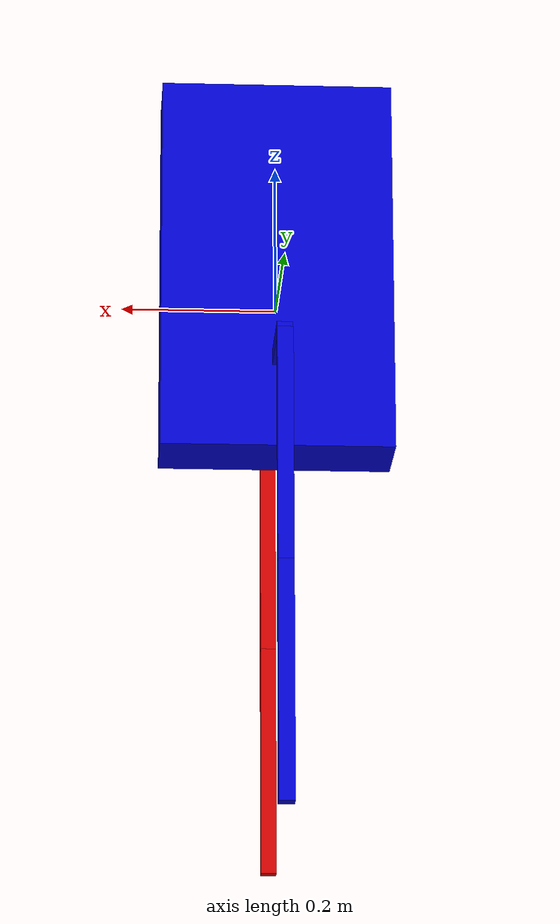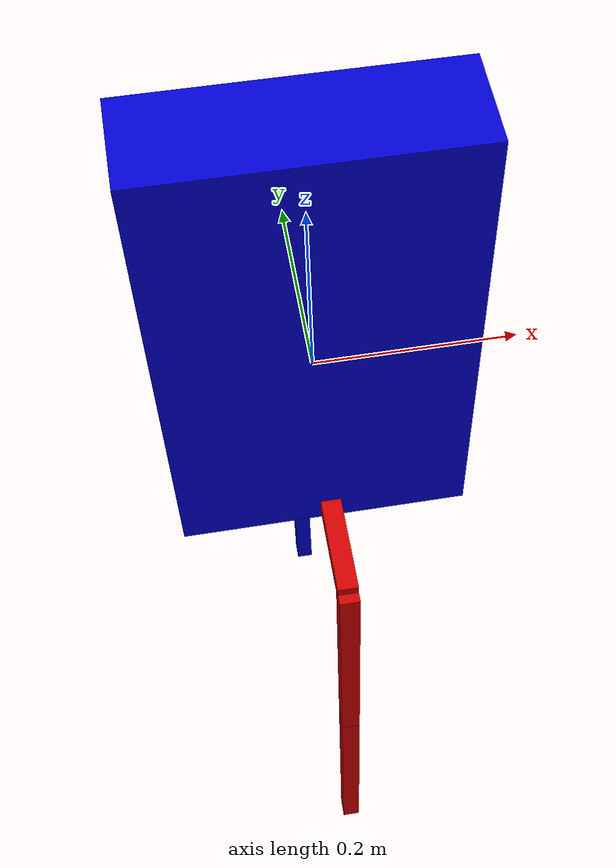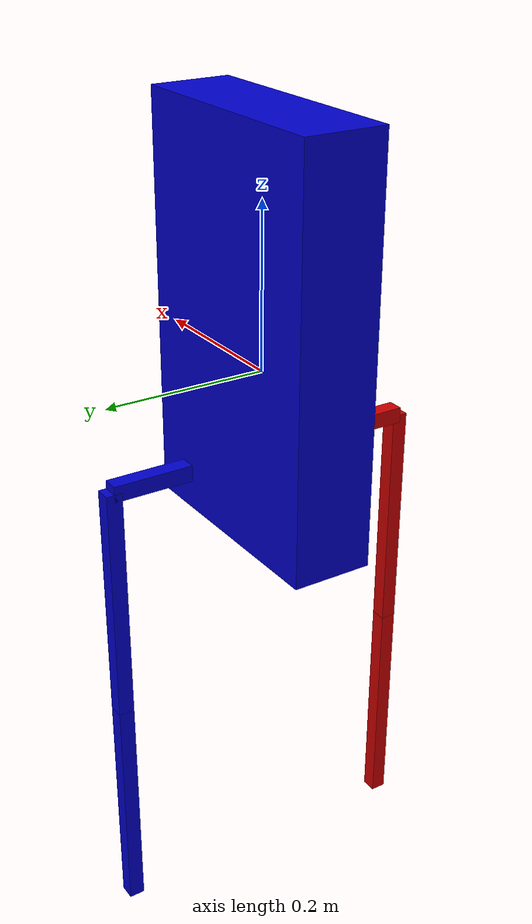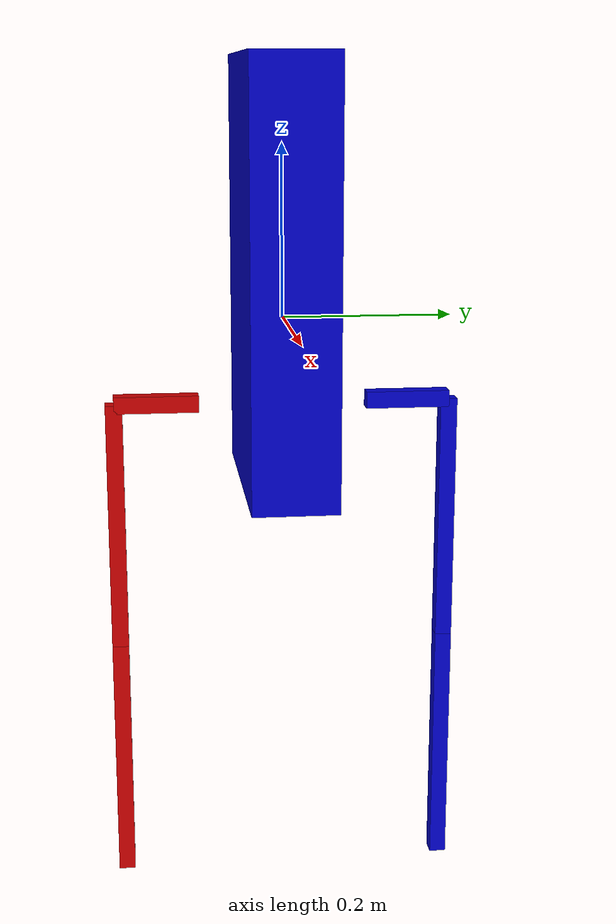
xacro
<?xml version="1.0"?>
<robot xmlns:xacro="http://www.ros.org/wiki/xacro" name="Airbot">
<xacro:property name="z0" value=".1" />
<xacro:property name="y0" value=".1" />
<xacro:property name="l1" value=".1" />
<xacro:property name="l2" value=".3" />
<xacro:property name="l3" value=".3" />

<!--Structural Properties-->
<xacro:property name="m0" value="3" />
<xacro:property name="m1" value=".1" />
<xacro:property name="m2" value=".15" />
<xacro:property name="m3" value=".1" />

<xacro:macro name="compute_inertia" params="mass x y z">
      <mass value="${mass}"/>
      <inertia ixx="${mass*(y*y + z*z)/3}" ixy="0.0" ixz="0.0" iyy="${mass*(x*x + z*z)/3}" iyz="0.0" izz="${mass*(x*x + y*y)/3}"/>
</xacro:macro>

  <link name="baselink"/>
  <link name="airbase">
    <visual>
			<origin rpy="0 0 0" xyz="0.0 0.0 0.05"/>
      <geometry>
				 <!--mesh filename="package://gcop_urdf/meshes/pelican1.dae" scale="0.025 0.025 0.025"/-->
        <box size="0.3 ${l1} 0.5"/>
      </geometry>
      <material name="blue">
        <color rgba="0 0 0.8 1"/>
      </material>
    </visual>
    <inertial>
      <mass value="${m0}"/>
      <inertia ixx="${m0*4.32e-3}" ixy="0.0" ixz="0.0" iyy="${m0*4.32e-3}" iyz="0.0" izz="${m0*8.41e-3}"/>
    </inertial>
  </link>
  <link name="link1">
    <visual>
			<origin rpy="0 0 0" xyz="0.0 ${l1/2} 0.0"/>
      <material name="blue">
        <color rgba="0 0 0.8 1"/>
      </material>
      <geometry>
        <box size="0.02 ${l1} 0.02"/>
      </geometry>
    </visual>
    <inertial>
			<origin rpy="0 0 0" xyz="0.0 ${l1/2} 0.0"/>
			<xacro:compute_inertia mass="${m1}" x="0.02" y="${l1}" z="0.02" />
    </inertial>
  </link>
  <link name="link2">
    <visual>
			<origin rpy="0 0 0" xyz="0.0 0.0 ${-l2/2}"/>
      <geometry>
        <box size="0.02 0.02 ${l2}"/>
      </geometry>
      <material name="blue">
        <color rgba="0 0 0.8 1"/>
      </material>
    </visual>
    <inertial>
			<origin rpy="0 0 0" xyz="0.0 0.0 ${-l2/2}"/>
			<xacro:compute_inertia mass="${m2}" x="0.02" y="0.02" z="${l2}" />
    </inertial>
  </link>
  <link name="link3">
    <visual>
			<origin rpy="0 0 0" xyz="0.0 0.0 ${-l3/2}"/>
      <geometry>
        <box size="0.02 0.02 ${l3}"/>
      </geometry>
      <material name="blue">
        <color rgba="0 0 0.8 1"/>
      </material>
    </visual>
    <inertial>
			<origin rpy="0 0 0" xyz="0.0 0.0 ${-l3/2}"/>
			<xacro:compute_inertia mass="${m3}" x="0.02" y="0.02" z="${l3}" />
    </inertial>
  </link>
   <link name="link4">
    <visual>
			<origin rpy="0 0 0" xyz="0.0 ${-l1/2} 0.0"/>
      <material name="red">
        <color rgba="0.8 0 0 1"/>
      </material>
      <geometry>
        <box size="0.02 ${l1} 0.02"/>
      </geometry>
    </visual>
    <inertial>
			<origin rpy="0 0 0" xyz="0.0 ${-l1/2} 0.0"/>
			<xacro:compute_inertia mass="${m1}" x="0.02" y="${l1}" z="0.02" />
    </inertial>
  </link>
  <link name="link5">
    <visual>
			<origin rpy="0 0 0" xyz="0.0 0.0 ${-l2/2}"/>
      <geometry>
        <box size="0.02 0.02 ${l2}"/>
      </geometry>
      <material name="red">
        <color rgba="0.8 0 0 1"/>
      </material>
    </visual>
    <inertial>
			<origin rpy="0 0 0" xyz="0.0 0.0 ${-l2/2}"/>
			<xacro:compute_inertia mass="${m2}" x="0.02" y="0.02" z="${l2}" />
    </inertial>
  </link>
  <link name="link6">
    <visual>
			<origin rpy="0 0 0" xyz="0.0 0.0 ${-l3/2}"/>
      <geometry>
        <box size="0.02 0.02 ${l3}"/>
      </geometry>
      <material name="red">
        <color rgba="0.8 0 0 1"/>
      </material>
    </visual>
    <inertial>
			<origin rpy="0 0 0" xyz="0.0 0.0 ${-l3/2}"/>
			<xacro:compute_inertia mass="${m3}" x="0.02" y="0.02" z="${l3}" />
    </inertial>
  </link>
 <!-- Joints -->
  <joint name="basetoairbase" type="fixed">
    <parent link="baselink"/>
    <child link="airbase"/>
    <origin rpy="0 0 0" xyz="0 0 0"/>
  </joint>
  <joint name="airbasetolink1" type="revolute">
    <parent link="airbase"/>
    <child link="link1"/>
		<origin rpy="0 0 0" xyz="0 ${y0} ${-z0}"/>
    <axis xyz="0 0 1"/>
		<limit effort="30" velocity="10.0" lower="-3.14" upper="3.14" />
  </joint>
	<joint name="link1tolink2" type="revolute">
    <parent link="link1"/>
    <child link="link2"/>
		<origin rpy="0 0 0" xyz="0 ${l1} 0"/>
    <axis xyz="0 1 0"/>
		<limit effort="30" velocity="10.0" lower="-3.14" upper="3.14" />
  </joint>
	<joint name="link2tolink3" type="revolute">
    <parent link="link2"/>
    <child link="link3"/>
		<origin rpy="0 0 0" xyz="0 0 ${-l2}"/>
    <axis xyz="0 1 0"/>
		<limit effort="30" velocity="10.0" lower="-3.14" upper="3.14" />
  </joint>
  <joint name="airbasetolink4" type="revolute">
    <parent link="airbase"/>
    <child link="link4"/>
		<origin rpy="0 0 0" xyz="0 ${-y0} ${-z0}"/>
    <axis xyz="0 0 1"/>
		<limit effort="30" velocity="10.0" lower="-3.14" upper="3.14" />
  </joint>
	<joint name="link4tolink5" type="revolute">
    <parent link="link4"/>
    <child link="link5"/>
		<origin rpy="0 0 0" xyz="0 ${-l1} 0"/>
    <axis xyz="0 1 0"/>
		<limit effort="30" velocity="10.0" lower="-3.14" upper="3.14" />
  </joint>
	<joint name="link5tolink6" type="revolute">
    <parent link="link5"/>
    <child link="link6"/>
		<origin rpy="0 0 0" xyz="0 0 ${-l2}"/>
    <axis xyz="0 1 0"/>
		<limit effort="30" velocity="10.0" lower="-3.14" upper="3.14" />
  </joint>
</robot>
